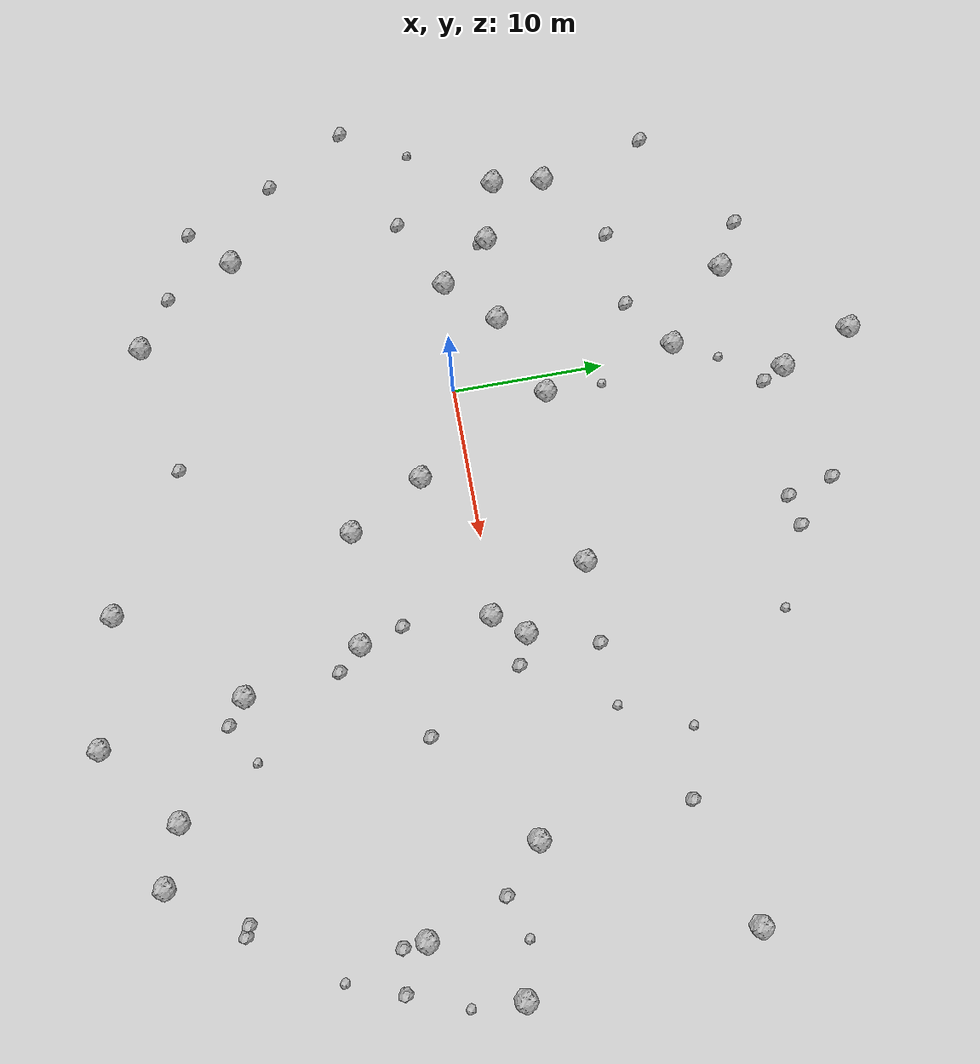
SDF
<sdf version="1.6">
 <world name="default">
  <include><uri>model://custom_ground</uri></include>
  <include><uri>model://sun</uri></include>
  <model name="rock1_0_0">
   <include><uri>model://rock1</uri><pose>36.748889242513826 12.496221878764487 0.5 0 0 0</pose></include>
  </model>
  <model name="rock1_0_1">
   <include><uri>model://rock1</uri><pose>8.304556575480731 -8.188195047349076 0.5 0 0 0</pose></include>
  </model>
  <model name="rock1_0_2">
   <include><uri>model://rock1</uri><pose>15.584066895953853 -8.7487986993089 0.5 0 0 0</pose></include>
  </model>
  <model name="rock1_0_3">
   <include><uri>model://rock1</uri><pose>5.532269456168649 -3.180855491801495 0.5 0 0 0</pose></include>
  </model>
  <model name="rock1_0_4">
   <include><uri>model://rock1</uri><pose>17.480876862670065 -16.444136282595583 0.5 0 0 0</pose></include>
  </model>
  <model name="rock1_0_5">
   <include><uri>model://rock1</uri><pose>38.369998935726755 -2.3189379626910025 0.5 0 0 0</pose></include>
  </model>
  <model name="rock1_0_6">
   <include><uri>model://rock1</uri><pose>12.839707088837109 6.328392764724342 0.5 0 0 0</pose></include>
  </model>
  <model name="rock1_0_7">
   <include><uri>model://rock1</uri><pose>33.98044942087731 -7.58404247393117 0.5 0 0 0</pose></include>
  </model>
  <model name="rock1_0_8">
   <include><uri>model://rock1</uri><pose>-6.426143357138169 -20.040606651788437 0.5 0 0 0</pose></include>
  </model>
  <model name="rock1_0_9">
   <include><uri>model://rock1</uri><pose>29.350248983008214 0.18900275283124301 0.5 0 0 0</pose></include>
  </model>
  <model name="rock1_0_10">
   <include><uri>model://rock1</uri><pose>-7.342157446605862 0.6004783828179789 0.5 0 0 0</pose></include>
  </model>
  <model name="rock1_0_11">
   <include><uri>model://rock1</uri><pose>24.36899145372358 -21.446002364901233 0.5 0 0 0</pose></include>
  </model>
  <model name="rock1_0_12">
   <include><uri>model://rock1</uri><pose>16.715484292252874 1.7516208650838507 0.5 0 0 0</pose></include>
  </model>
  <model name="rock1_0_13">
   <include><uri>model://rock1</uri><pose>15.19924243766976 -0.2518553536445509 0.5 0 0 0</pose></include>
  </model>
  <model name="rock1_0_14">
   <include><uri>model://rock1</uri><pose>10.933263179175079 -23.97170577837258 0.5 0 0 0</pose></include>
  </model>
  <model name="rock1_0_15">
   <include><uri>model://rock1</uri><pose>-11.384794949817163 -13.296588612995308 0.5 0 0 0</pose></include>
  </model>
  <model name="rock1_0_16">
   <include><uri>model://rock1</uri><pose>-13.996076443566732 5.122408244944154 0.5 0 0 0</pose></include>
  </model>
  <model name="rock1_0_17">
   <include><uri>model://rock1</uri><pose>1.264840260701586 5.9397049934866 0.5 0 0 0</pose></include>
  </model>
  <model name="rock1_0_18">
   <include><uri>model://rock1</uri><pose>2.3584784601541102 21.76944176206944 0.5 0 0 0</pose></include>
  </model>
  <model name="rock1_0_19">
   <include><uri>model://rock1</uri><pose>-0.5035977309129294 14.845360546524788 0.5 0 0 0</pose></include>
  </model>
  <model name="rock1_0_20">
   <include><uri>model://rock1</uri><pose>0.4848170203675437 26.648766132484802 0.5 0 0 0</pose></include>
  </model>
  <model name="rock1_0_21">
   <include><uri>model://rock1</uri><pose>-10.005918021464275 3.9509494095865776 0.5 0 0 0</pose></include>
  </model>
  <model name="rock1_0_22">
   <include><uri>model://rock1</uri><pose>-13.612738521137182 8.525618808304507 0.5 0 0 0</pose></include>
  </model>
  <model name="rock1_0_23">
   <include><uri>model://rock1</uri><pose>-4.317706698785672 3.6858206310314188 0.5 0 0 0</pose></include>
  </model>
  <model name="rock1_0_24">
   <include><uri>model://rock1</uri><pose>28.083412543579506 -22.82038374966076 0.5 0 0 0</pose></include>
  </model>
  <model name="rock1_0_25">
   <include><uri>model://rock1</uri><pose>-5.271276130045413 19.1678166611825 0.5 0 0 0</pose></include>
  </model>
  <model name="rock1_0_26">
   <include><uri>model://rock1</uri><pose>19.087670895961786 -25.768716896162147 0.5 0 0 0</pose></include>
  </model>
  <model name="rock2_0_0">
   <include><uri>model://rock2</uri><pose>17.011577642530717 -10.311913058934376 0.3 0 0 0</pose></include>
  </model>
  <model name="rock2_0_1">
   <include><uri>model://rock2</uri><pose>-16.45265853926905 -9.93662700943948 0.3 0 0 0</pose></include>
  </model>
  <model name="rock2_0_2">
   <include><uri>model://rock2</uri><pose>10.177817625461294 23.289633437289545 0.3 0 0 0</pose></include>
  </model>
  <model name="rock2_0_3">
   <include><uri>model://rock2</uri><pose>32.23000792605303 -2.369441813465187 0.3 0 0 0</pose></include>
  </model>
  <model name="rock2_0_4">
   <include><uri>model://rock2</uri><pose>31.749527647956825 -18.355526439987905 0.3 0 0 0</pose></include>
  </model>
  <model name="rock2_0_5">
   <include><uri>model://rock2</uri><pose>18.606417307714075 0.9759077779962517 0.3 0 0 0</pose></include>
  </model>
  <model name="rock2_0_6">
   <include><uri>model://rock2</uri><pose>3.03519606342034 20.354383352331652 0.3 0 0 0</pose></include>
  </model>
  <model name="rock2_0_7">
   <include><uri>model://rock2</uri><pose>-3.9116641756081663 12.398385040536937 0.3 0 0 0</pose></include>
  </model>
  <model name="rock2_0_8">
   <include><uri>model://rock2</uri><pose>22.013919399852384 -5.315565583734102 0.3 0 0 0</pose></include>
  </model>
  <model name="rock2_0_9">
   <include><uri>model://rock2</uri><pose>-13.996996616420333 -15.871657970608181 0.3 0 0 0</pose></include>
  </model>
  <model name="rock2_0_10">
   <include><uri>model://rock2</uri><pose>19.080621428373007 -17.65955255044924 0.3 0 0 0</pose></include>
  </model>
  <model name="rock2_0_11">
   <include><uri>model://rock2</uri><pose>31.11656836782504 -18.07961669740828 0.3 0 0 0</pose></include>
  </model>
  <model name="rock2_0_12">
   <include><uri>model://rock2</uri><pose>-12.178293738532673 -1.7681816771376866 0.3 0 0 0</pose></include>
  </model>
  <model name="rock2_0_13">
   <include><uri>model://rock2</uri><pose>28.63558359336664 10.02600559022909 0.3 0 0 0</pose></include>
  </model>
  <model name="rock2_0_14">
   <include><uri>model://rock2</uri><pose>10.918100806417378 20.227023833301573 0.3 0 0 0</pose></include>
  </model>
  <model name="rock2_0_15">
   <include><uri>model://rock2</uri><pose>36.75825682109866 -9.373893446213799 0.3 0 0 0</pose></include>
  </model>
  <model name="rock2_0_16">
   <include><uri>model://rock2</uri><pose>-8.311485556650815 20.861805642029644 0.3 0 0 0</pose></include>
  </model>
  <model name="rock2_0_17">
   <include><uri>model://rock2</uri><pose>-9.004510486543042 12.071962315633172 0.3 0 0 0</pose></include>
  </model>
  <model name="rock2_0_18">
   <include><uri>model://rock2</uri><pose>34.107720485340835 -9.1001049087279 0.3 0 0 0</pose></include>
  </model>
  <model name="rock2_0_19">
   <include><uri>model://rock2</uri><pose>2.2002663809617005 -18.62042267863199 0.3 0 0 0</pose></include>
  </model>
  <model name="rock2_0_20">
   <include><uri>model://rock2</uri><pose>-9.935007975250297 3.5352489983008653 0.3 0 0 0</pose></include>
  </model>
  <model name="rock2_0_21">
   <include><uri>model://rock2</uri><pose>-15.419711224936597 15.730983502538983 0.3 0 0 0</pose></include>
  </model>
  <model name="rock2_0_22">
   <include><uri>model://rock2</uri><pose>-19.51401912396152 -4.598353114881377 0.3 0 0 0</pose></include>
  </model>
  <model name="rock2_0_23">
   <include><uri>model://rock2</uri><pose>18.08927816964446 6.282298694196264 0.3 0 0 0</pose></include>
  </model>
  <model name="rock2_0_24">
   <include><uri>model://rock2</uri><pose>-9.63677915590936 -17.819289890260865 0.3 0 0 0</pose></include>
  </model>
  <model name="rock2_0_25">
   <include><uri>model://rock2</uri><pose>14.845341763011092 -5.927526935985398 0.3 0 0 0</pose></include>
  </model>
  <model name="rock2_0_26">
   <include><uri>model://rock2</uri><pose>12.957747453306268 20.58352328168587 0.3 0 0 0</pose></include>
  </model>
  <model name="rock3_0_0">
   <include><uri>model://rock3</uri><pose>0.8460595418767589 17.726118514708865 0.2 0 0 0</pose></include>
  </model>
  <model name="rock3_0_1">
   <include><uri>model://rock3</uri><pose>34.944442455086936 -1.4771490001085468 0.2 0 0 0</pose></include>
  </model>
  <model name="rock3_0_2">
   <include><uri>model://rock3</uri><pose>18.02998847226072 18.36030123110187 0.2 0 0 0</pose></include>
  </model>
  <model name="rock3_0_3">
   <include><uri>model://rock3</uri><pose>24.238506484213495 11.036022186867399 0.2 0 0 0</pose></include>
  </model>
  <model name="rock3_0_4">
   <include><uri>model://rock3</uri><pose>22.147681277712962 6.562195681510978 0.2 0 0 0</pose></include>
  </model>
  <model name="rock3_0_5">
   <include><uri>model://rock3</uri><pose>35.47461911975503 -12.91269905481154 0.2 0 0 0</pose></include>
  </model>
  <model name="rock3_0_6">
   <include><uri>model://rock3</uri><pose>38.27224865580588 -5.695289194411572 0.2 0 0 0</pose></include>
  </model>
  <model name="rock3_0_7">
   <include><uri>model://rock3</uri><pose>-17.151315165708358 -0.3251180601786494 0.2 0 0 0</pose></include>
  </model>
  <model name="rock3_0_8">
   <include><uri>model://rock3</uri><pose>21.64272996921332 -16.261691292687622 0.2 0 0 0</pose></include>
  </model>
  <model name="rock3_0_9">
   <include><uri>model://rock3</uri><pose>1.2678025787208256 9.720159663103466 0.2 0 0 0</pose></include>
  </model>
 </world>
</sdf>
